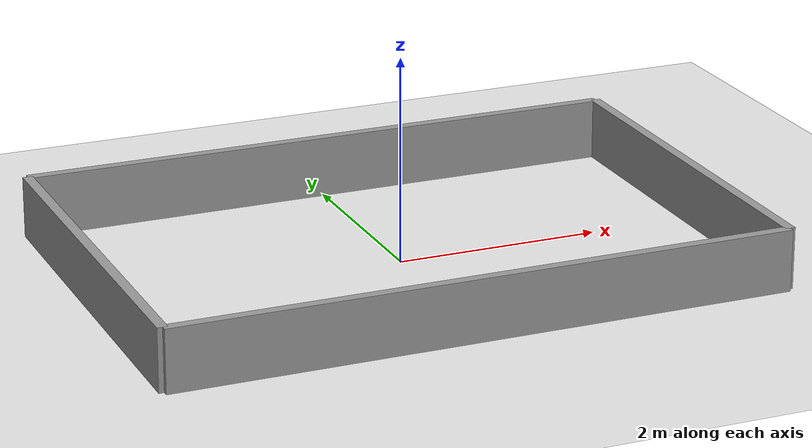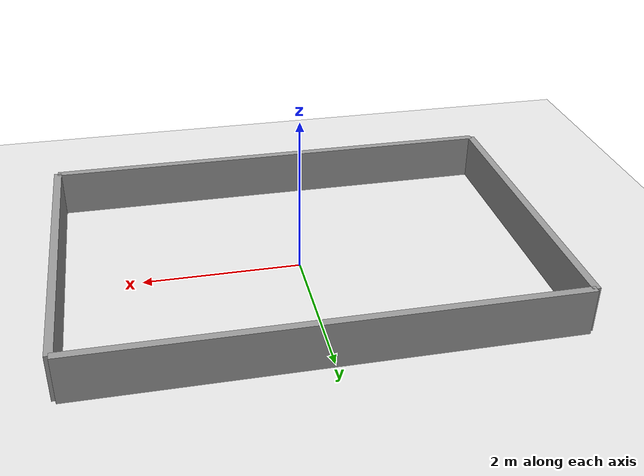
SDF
<sdf version="1.6">
 <world name="default">
  <physics name="1ms" type="ode">
   <max_step_size>0.01</max_step_size>
   <real_time_factor>1.0</real_time_factor>
  </physics>
  <light type="directional" name="sun">
   <pose>0 0 10 0 0 0</pose>
   <diffuse>0.8 0.8 0.8 1</diffuse>
   <specular>0.2 0.2 0.2 1</specular>
   <attenuation>
    <range>1000</range>
    <constant>0.9</constant>
    <linear>0.01</linear>
    <quadratic>0.001</quadratic>
   </attenuation>
   <direction>-0.5 0.1 -0.9</direction>
  </light>
  <model name="ground_plane">
   <static>true</static>
   <link name="link">
    <collision name="collision">
     <geometry><plane><normal>0 0 1</normal><size>100 100</size></plane></geometry>
    </collision>
    <visual name="visual">
     <geometry><plane><normal>0 0 1</normal><size>100 100</size></plane></geometry>
     <material><ambient>0.9 0.9 0.9 1</ambient><diffuse>0.9 0.9 0.9 1</diffuse></material>
    </visual>
   </link>
  </model>
  <model name="wall_north">
   <static>true</static>
   <pose>0 2.004 0.3 0 0 0</pose>
   <link name="link">
    <collision name="collision"><geometry><box><size>6.000 0.1 0.6</size></box></geometry></collision>
    <visual name="visual">
     <geometry><box><size>6.000 0.1 0.6</size></box></geometry>
     <material><ambient>0.5 0.5 0.5 1</ambient><diffuse>0.6 0.6 0.6 1</diffuse></material>
    </visual>
   </link>
  </model>
  <model name="wall_south">
   <static>true</static>
   <pose>0 -2.004 0.3 0 0 0</pose>
   <link name="link">
    <collision name="collision"><geometry><box><size>6.000 0.1 0.6</size></box></geometry></collision>
    <visual name="visual">
     <geometry><box><size>6.000 0.1 0.6</size></box></geometry>
     <material><ambient>0.5 0.5 0.5 1</ambient><diffuse>0.6 0.6 0.6 1</diffuse></material>
    </visual>
   </link>
  </model>
  <model name="wall_east">
   <static>true</static>
   <pose>3.000 0 0.3 0 0 0</pose>
   <link name="link">
    <collision name="collision"><geometry><box><size>0.1 4.008 0.6</size></box></geometry></collision>
    <visual name="visual">
     <geometry><box><size>0.1 4.008 0.6</size></box></geometry>
     <material><ambient>0.5 0.5 0.5 1</ambient><diffuse>0.6 0.6 0.6 1</diffuse></material>
    </visual>
   </link>
  </model>
  <model name="wall_west">
   <static>true</static>
   <pose>-3.000 0 0.3 0 0 0</pose>
   <link name="link">
    <collision name="collision"><geometry><box><size>0.1 4.008 0.6</size></box></geometry></collision>
    <visual name="visual">
     <geometry><box><size>0.1 4.008 0.6</size></box></geometry>
     <material><ambient>0.5 0.5 0.5 1</ambient><diffuse>0.6 0.6 0.6 1</diffuse></material>
    </visual>
   </link>
  </model>
 </world>
</sdf>
